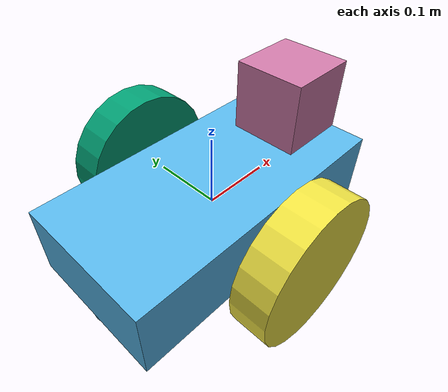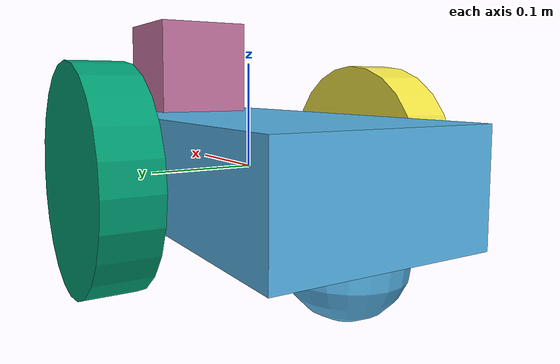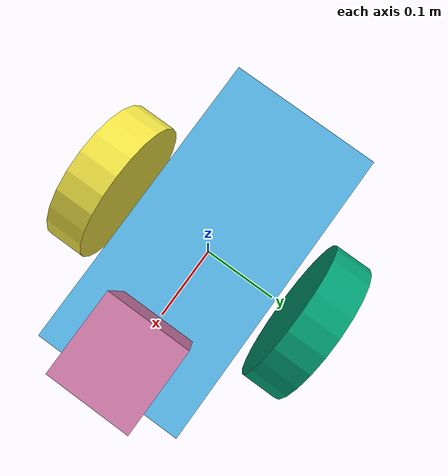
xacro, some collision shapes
<?xml version='1.0'?>

<robot name="my_robot" xmlns:xacro="http://www.ros.org/wiki/xacro">
  <xacro:include filename="$(find my_robot)/urdf/my_robot.gazebo" />

  <link name="robot_footprint"></link>

  <joint name="robot_footprint_joint" type="fixed">
    <origin xyz="0 0 0" rpy="0 0 0" />
    <parent link="robot_footprint"/>
    <child link="chassis" />
  </joint>

  <link name='chassis'>
    <pose>0 0 0.1 0 0 0</pose>

    <inertial>
      <mass value="15.0"/>
      <origin xyz="0.0 0 0" rpy=" 0 0 0"/>
      <inertia
          ixx="0.1" ixy="0" ixz="0"
          iyy="0.1" iyz="0"
          izz="0.1"
      />
    </inertial>

    <collision name='collision'>
      <origin xyz="0 0 0" rpy=" 0 0 0"/>
      <geometry>
        <box size=".4 .2 .1"/>
      </geometry>
    </collision>

    <visual name='chassis_visual'>
      <origin xyz="0 0 0" rpy=" 0 0 0"/>
      <geometry>
        <box size=".4 .2 .1"/>
      </geometry>
    </visual>

    <collision name='back_caster_collision'>
      <origin xyz="-0.15 0 -0.05" rpy=" 0 0 0"/>
      <geometry>
        <sphere radius="0.0499"/>
      </geometry>
    </collision>

    <visual name='back_caster_visual'>
      <origin xyz="-0.15 0 -0.05" rpy=" 0 0 0"/>
      <geometry>
        <sphere radius="0.05"/>
      </geometry>
    </visual>

    <collision name='front_caster_collision'>
      <origin xyz="0.15 0 -0.05" rpy=" 0 0 0"/>
      <geometry>
        <sphere radius="0.0499"/>
      </geometry>
    </collision>

    <visual name='front_caster_visual'>
      <origin xyz="0.15 0 -0.05" rpy=" 0 0 0"/>
      <geometry>
        <sphere radius="0.05"/>
      </geometry>
    </visual>

  </link>

  <link name="left_wheel">
    <inertial>
      <mass value="5.0"/>
      <origin xyz="0.0 0 0" rpy=" 0 1.5707 1.5707"/>
      <inertia
          ixx="0.1" ixy="0" ixz="0"
          iyy="0.1" iyz="0"
          izz="0.1"
      />
    </inertial>

    <collision name='collision'>
      <origin xyz="0.0 0 0" rpy=" 0 1.5707 1.5707"/>
      <geometry>
        <cylinder radius=" 0.1" length= "0.05" />
      </geometry>
    </collision>

    <visual name='visual'>
      <origin xyz="0.0 0 0" rpy=" 0 1.5707 1.5707"/>
      <geometry>
        <cylinder radius=" 0.1" length= "0.05"/>
      </geometry>
    </visual>
  </link>

  <joint type="continuous" name="left_wheel_hinge">
    <origin xyz="0 0.15 0" rpy="0 0 0"/>
    <child link="left_wheel"/>
    <parent link="chassis"/>
    <axis xyz="0 1 0" rpy="0 0 0"/>
    <limit effort="10000" velocity="1000"/>
    <dynamics damping="1.0" friction="1.0"/>
  </joint>

  <link name="right_wheel">
    <inertial>
      <mass value="5.0"/>
      <origin xyz="0.0 0 0" rpy=" 0 1.5707 1.5707"/>
      <inertia
          ixx="0.1" ixy="0" ixz="0"
          iyy="0.1" iyz="0"
          izz="0.1"
      />
    </inertial>

    <collision name='collision'>
      <origin xyz="0.0 0 0" rpy=" 0 1.5707 1.5707"/>
      <geometry>
        <cylinder radius=" 0.1" length= "0.05" />
      </geometry>
    </collision>

    <visual name='visual'>
      <origin xyz="0.0 0 0" rpy=" 0 1.5707 1.5707"/>
      <geometry>
        <cylinder radius=" 0.1" length= "0.05"/>
      </geometry>
    </visual>
  </link>

  <joint type="continuous" name="right_wheel_hinge">
    <origin xyz="0 -0.15 0" rpy="0 0 0"/>
    <child link="right_wheel"/>
    <parent link="chassis"/>
    <axis xyz="0 1 0" rpy="0 0 0"/>
    <limit effort="10000" velocity="1000"/>
    <dynamics damping="1.0" friction="1.0"/>
  </joint>

  <!-- sensors -->
  <link name="camera">
    <inertial>
      <mass value="0.1"/>
      <origin xyz="0.0 0 0" rpy=" 0 0 0"/>
      <inertia
          ixx="1e-6" ixy="0" ixz="0"
          iyy="1e-6" iyz="0"
          izz="1e-6"
      />
    </inertial>

    <collision name='collision'>
      <origin xyz="0.0 0 0" rpy=" 0 0 0"/>
      <geometry>
        <box size="0.05 0.05 0.05"/>
      </geometry>
    </collision>

    <visual name='visual'>
      <origin xyz="0.0 0 0" rpy=" 0 0 0"/>
      <geometry>
        <box size="0.05 0.05 0.05"/>
      </geometry>
    </visual>
  </link>

  <joint type="fixed" name="camera_joint">
    <origin xyz="0.2 0 0" rpy="0 0 0"/>
    <child link="camera"/>
    <parent link="chassis"/>
    <axis xyz="0 1 0" rpy="0 0 0"/>
  </joint>

  <link name="camera_optical">
  </link>

  <joint name="camera_optical_joint" type="fixed">
    <origin xyz="0 0 0" rpy="-1.5707 0 -1.5707"/>
    <parent link="camera"/>
    <child link="camera_optical"/>
  </joint>

  <link name="hokuyo">
    <inertial>
      <mass value="1e-5"/>
      <origin xyz="0.0 0 0" rpy=" 0 0 0"/>
      <inertia
          ixx="1e-6" ixy="0" ixz="0"
          iyy="1e-6" iyz="0"
          izz="1e-6"
      />
    </inertial>

    <collision name='collision'>
      <origin xyz="0.0 0 0" rpy=" 0 0 0"/>
      <geometry>
        <box size="0.1 0.1 0.1"/>
      </geometry>
    </collision>

    <visual name='visual'>
      <origin xyz="0.0 0 0" rpy=" 0 0 0"/>
      <geometry>
      <mesh filename="package://my_robot/meshes/hokuyo.dae" />
      </geometry>
    </visual>
  </link>

  <joint type="fixed" name="hokuyo_joint">
    <origin xyz="0.15 0 0.1" rpy="0 0 0"/>
    <child link="hokuyo"/>
    <parent link="chassis"/>
    <axis xyz="0 1 0" rpy="0 0 0"/>
  </joint>

    <xacro:property name="sensor_box" value="0.01" />
    <xacro:property name="mass" value="0.01" />
  <link name="imu">
      <visual>
        <geometry>
          <box size="${sensor_box} ${sensor_box} ${sensor_box}"/>
        </geometry>
        <origin rpy="0 0 0" xyz="0 0 0"/>
        <material name="red">
          <color rgba="1.0 0.0 0.0 2.0"/>
        </material>
      </visual>
      <inertial>
        <origin rpy="0 0 0" xyz="0 0 0"/>
        <mass value="${mass}"/>
        <inertia ixx="${(sensor_box*sensor_box+sensor_box*sensor_box)*mass/12.0}" ixy="0.0" ixz="0.0"
                 iyy="${(sensor_box*sensor_box+sensor_box*sensor_box)*mass/12.0}" iyz="0.0"
                 izz="${(sensor_box*sensor_box+sensor_box*sensor_box)*mass/12.0}"/>
      </inertial>
      <collision>
        <origin rpy="0 0 0" xyz="0 0 0"/>
        <geometry>
          <box size="${sensor_box} ${sensor_box} ${sensor_box}"/>
        </geometry>
      </collision>
  </link>

  <joint name="imu_joint" type="fixed">
    <origin rpy="0 0 0" xyz="0.2 0.1 0"/>
    <parent link="chassis"/>
    <child  link="imu"/>
  </joint>

</robot>
